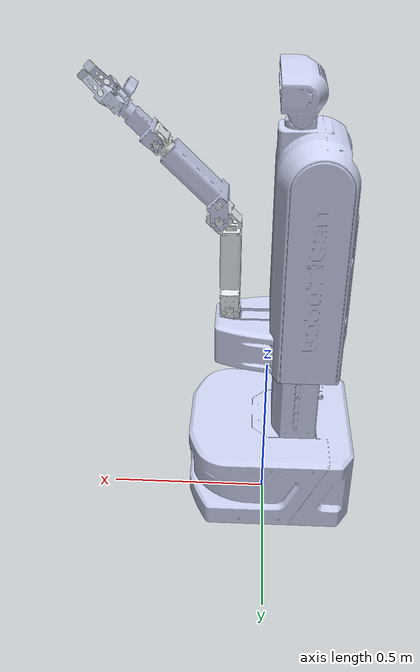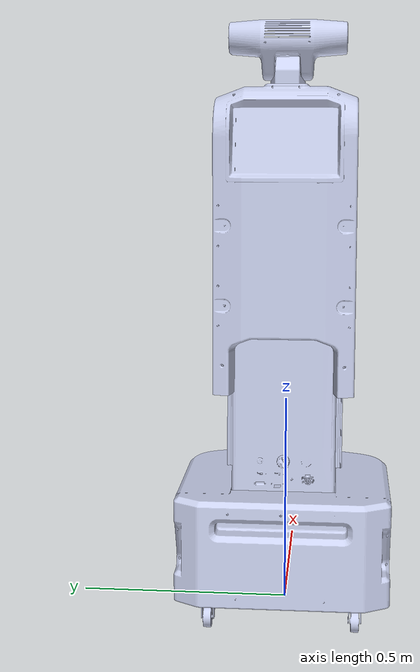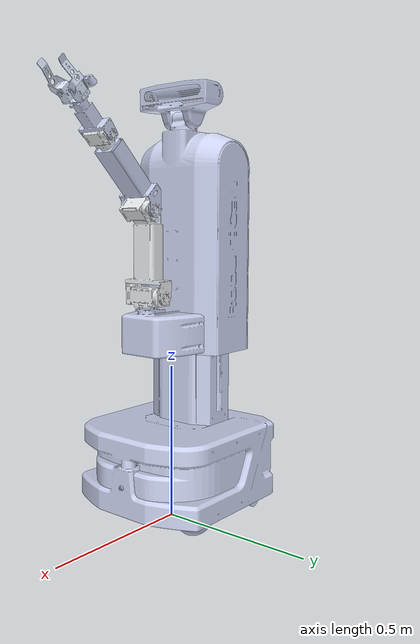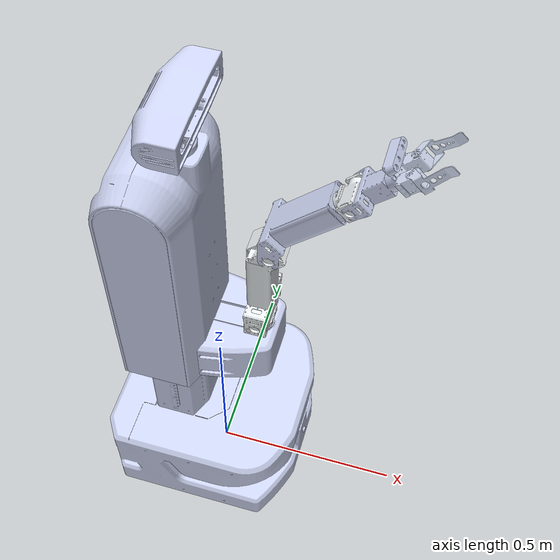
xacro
<?xml version="1.0"?>

<robot xmlns:xacro="http://www.ros.org/wiki/xacro" name="armadillo_robot" description="armadillo robot">

 <xacro:property name="M_PI" value="3.1415926535897931" />
 <xacro:property name="WHEEL_RADIUS" value="0.1016" />

 <xacro:include filename="$(find armadillo_description)/urdf/intel_d435.urdf"/>

<link name="base_footprint"/>

 <joint name="base_footprint_joint" type="fixed">
    <parent link="base_footprint"/>
    <child link="base_link"/>
    <origin xyz="0.00 0.00 ${WHEEL_RADIUS-0.0115}" rpy="0.0 0.0 0.0"/>
  </joint>

  <link
    name="base_link">
    <inertial>
      <origin
        xyz="-0.012353 0.000122 0.17716"
        rpy="0 0 0" />
       <mass
        value="30" />
        <inertia
          ixx="0.61639"
          ixy="-9.1727E-05"
          ixz="-0.093044"
          iyy="0.57997"
          iyz="5.3231E-05"
          izz="0.36693" />
        </inertial>
    <visual>
      <origin
        xyz="0 0 0"
        rpy="0 0 0" />
      <geometry>
        <mesh
          filename="package://armadillo_description/mesh/base_link.STL" />
      </geometry>
      <material
        name="">
        <color
          rgba="0.79216 0.81961 0.93333 1" />
      </material>
    </visual>
 <collision name='base_collision'>
       <origin
        xyz="0 0 0"
        rpy="0 0 0" />
      <geometry>
        <mesh
          filename="package://armadillo_description/mesh/base_link.STL" />
      </geometry>
          </collision>
  </link>

    <joint name="caster_back_left_joint" type="fixed">
      <parent link="base_link"/>
      <child link="caster_back_left_link"/>
      <origin xyz="-0.2 0.24 ${-WHEEL_RADIUS+0.0115+0.05}" rpy="${-M_PI/2} 0 0"/>
    </joint>
    <link name="caster_back_left_link">
      <collision>
        <geometry>
          <cylinder length="0.06" radius="0.05"/>
        </geometry>
        <origin rpy="0 0 0" xyz="0 0 -0.03"/>
      </collision>
      <inertial>
        <mass value="0.0001" />
        <origin xyz="0 0 0" />
        <inertia
        ixx="0.0069046"
        ixy="-3.8717E-08"
        ixz="2.0707E-07"
        iyy="0.01"
        iyz="-1.0124E-07"
        izz="0.0069054" />
      </inertial>
    </link>

    <joint name="caster_back_right_joint" type="fixed">
      <parent link="base_link"/>
      <child link="caster_back_right_link"/>
      <origin xyz="-0.2 -0.24 ${-WHEEL_RADIUS+0.0115+0.05}" rpy="${-M_PI/2} 0 0"/>
    </joint>
    <link name="caster_back_right_link">
      <collision>
        <geometry>
          <cylinder length="0.06" radius="0.05"/>
        </geometry>
        <origin rpy="0 0 0" xyz="0 0 0.03"/>
      </collision>
      <inertial>
        <mass value="0.0001" />
        <origin xyz="0 0 0" />
        <inertia
        ixx="0.0069046"
        ixy="-3.8717E-08"
        ixz="2.0707E-07"
        iyy="0.01"
        iyz="-1.0124E-07"
        izz="0.0069054" />
      </inertial>
    </link>

 <link
    name="left_wheel_link">
    <inertial>
      <origin
        xyz="9.16610941069373E-06 4.59070539915452E-09 8.0609835912647E-06"
        rpy="0 0 0" />
    <mass
        value="1.5" />
      <inertia
        ixx="0.0069046"
        ixy="-3.8717E-08"
        ixz="2.0707E-07"
        iyy="0.01"
        iyz="-1.0124E-07"
        izz="0.0069054" />

      </inertial>
    <visual>
      <origin
        xyz="0 0 0"
        rpy="0 0 0" />
      <geometry>
        <mesh
          filename="package://armadillo_description/mesh/left_wheel_link.STL" />
      </geometry>
      <material
        name="">
        <color
          rgba="0.792156862745098 0.819607843137255 0.933333333333333 1" />
      </material>
    </visual>
    <collision>
      <origin
        xyz="0 0 0"
        rpy="${M_PI/2} 0 0" />
      <geometry>
      <cylinder  length="0.07" radius="${WHEEL_RADIUS}"/>
      </geometry>
    </collision>
  </link>

  <joint
    name="left_wheel_joint"
    type="continuous">
    <origin
      xyz="0.063115 0.16085 0.0115"
      rpy="0 0 0" />
    <parent
      link="base_link" />
    <child
      link="left_wheel_link" />
    <axis
      xyz="0 1 0" />
    <limit
      effort="0.1"
      velocity="10.0" />
  </joint>

 <link
    name="right_wheel_link">
    <inertial>
      <origin
        xyz="9.16610941069373E-06 -4.99540929455033E-06 8.06098359126817E-06"
        rpy="0 0 0" />
       <mass
        value="1.5" />
      <inertia
        ixx="0.0069046"
        ixy="-3.8717E-08"
        ixz="-2.0707E-07"
        iyy="0.01"
        iyz="1.0124E-07"
        izz="0.0069054" />
    </inertial>
    <visual>
      <origin
        xyz="0 0 0"
        rpy="0 0 0" />
      <geometry>
        <mesh
          filename="package://armadillo_description/mesh/right_wheel_link.STL" />
      </geometry>
      <material
        name="">
        <color
          rgba="0.792156862745098 0.819607843137255 0.933333333333333 1" />
      </material>
    </visual>
   <collision>
      <origin
        xyz="0 0 0"
        rpy="${M_PI/2} 0 0" />
      <geometry>
      <cylinder  length="0.07" radius="${WHEEL_RADIUS}"/>
      </geometry>
    </collision>
  </link>

  <joint
    name="right_wheel_joint"
    type="continuous">
    <origin
      xyz="0.063115 -0.16085 0.0115"
      rpy="0 0 0" />
    <parent
      link="base_link" />
    <child
      link="right_wheel_link" />
    <axis
      xyz="0 1 0" />
    <limit
      effort="0.1"
      velocity="10.0" />
  </joint>

 <link
    name="caster_left_link">
     <inertial>
      <origin
        xyz="9.16610941069373E-06 -4.99540929455033E-06 8.06098359126817E-06"
        rpy="0 0 0" />
       <mass
        value="0.0001" />
      <inertia
        ixx="0.0069046"
        ixy="-3.8717E-08"
        ixz="-2.0707E-07"
        iyy="0.01"
        iyz="1.0124E-07"
        izz="0.0069054" />
    </inertial>

    <visual>
      <origin
        xyz="0 0 0"
        rpy="0 0 0" />
      <geometry>
        <mesh
          filename="package://armadillo_description/mesh/caster_left_link.STL" />
      </geometry>
      <material
        name="">
        <color
          rgba="0.792156862745098 0.819607843137255 0.933333333333333 1" />
      </material>
    </visual>

  </link>

  <link
    name="laser_link" />
  <joint
    name="laser_joint"
    type="fixed">
    <origin
      xyz="0.20337 0 0.143"
      rpy="0 0 0" />
    <parent
      link="base_link" />
    <child
      link="laser_link" />
    <axis
      xyz="0 0 0" />
  </joint>
  <link
    name="front_urf_link" />
  <joint
    name="front_urf_joint"
    type="fixed">
    <origin
      xyz="0.24229 0.00011161 0.068509"
      rpy="0 0 0" />
    <parent
      link="base_link" />
    <child
      link="front_urf_link" />
    <axis
      xyz="0 0 0" />
  </joint>
  <joint
    name="caster_left_joint"
    type="fixed">
    <origin
      xyz="-0.221558374889189 0.168999999975415 -0.0596832588142329"
      rpy="0 0 0" />
    <parent
      link="base_link" />
    <child
      link="caster_left_link" />
    <axis
      xyz="0 0 0" />
  </joint>
  <link
    name="caster_right_link">
      <inertial>
      <origin
        xyz="9.16610941069373E-06 -4.99540929455033E-06 8.06098359126817E-06"
        rpy="0 0 0" />
       <mass
        value="0.0001" />
      <inertia
        ixx="0.0069046"
        ixy="-3.8717E-08"
        ixz="-2.0707E-07"
        iyy="0.01"
        iyz="1.0124E-07"
        izz="0.0069054" />
    </inertial>
    <visual>
      <origin
        xyz="0 0 0"
        rpy="0 0 0" />
      <geometry>
        <mesh
          filename="package://armadillo_description/mesh/caster_right_link.STL" />
      </geometry>
      <material
        name="">
        <color
          rgba="0.792156862745098 0.819607843137255 0.933333333333333 1" />
      </material>
    </visual>

  </link>
  <joint
    name="caster_right_joint"
    type="fixed">
    <origin
      xyz="-0.221558374889189 -0.168999999975416 -0.0596832588142329"
      rpy="0 0 0" />
    <parent
      link="base_link" />
    <child
      link="caster_right_link" />
    <axis
      xyz="0 0 0" />
  </joint>

  <link
    name="torso_link">
  <inertial>
      <origin
        xyz="-0.059733 -0.00037419 0.54938"
        rpy="0 0 0" />
     <mass
         value="0.035511" />
     <inertia
        ixx="0.19579"
        ixy="2.4285E-05"
        ixz="-0.0045097"
        iyy="0.16807"
        iyz="-7.4938E-05"
        izz="0.072852" />
    </inertial>
    <visual>
      <origin
        xyz="0 0 0"
        rpy="0 0 0" />
      <geometry>
        <mesh
          filename="package://armadillo_description/mesh/torso_link.STL" />
      </geometry>
      <material
        name="">
        <color
          rgba="0.79216 0.81961 0.93333 1" />
      </material>
    </visual>
    <collision name="torso">
      <origin
        xyz="0 0 0"
        rpy="0 0 0" />
      <geometry>
        <mesh
          filename="package://armadillo_description/mesh/torso_link.STL" />
      </geometry>
    </collision>

     <collision name="safty box">
      <origin
        xyz="0 -0.03 0.9"
        rpy="0 0 0" />
      <geometry>
        <box size="0.09 0.5 0.6"/>
      </geometry>
    </collision>

  </link>
  <joint
    name="torso_joint"
      type="prismatic">
    <origin
      xyz="0 0 0"
      rpy="0 0 0" />
    <parent
      link="base_link" />
    <child
      link="torso_link" />
    <axis
      xyz="0 0 1" />
    <limit
      lower="0.05"
      upper="0.40"
      effort="0.001"
      velocity="0.1" />
  </joint>

  <link
    name="head_pan_link">
  <inertial>
      <origin
        xyz="0.0044497 -0.00020474 0.02363"
        rpy="0 0 0" />
      <mass
        value="0.001" />
      <inertia
        ixx="3.6365E-05"
        ixy="-2.125E-07"
        ixz="-4.0004E-07"
        iyy="3.8545E-05"
        iyz="-4.6643E-07"
        izz="4.1521E-05" />
    </inertial>
    <visual>
      <origin
        xyz="0 0 0"
        rpy="0 0 0" />
      <geometry>
        <mesh
          filename="package://armadillo_description/mesh/head_pan_link.STL" />
      </geometry>
      <material
        name="">
        <color
          rgba="0.79216 0.81961 0.93333 1" />
      </material>
    </visual>
    <collision>
      <origin
        xyz="0 0 0"
        rpy="0 0 0" />
      <geometry>
        <mesh
          filename="package://armadillo_description/mesh/head_pan_link.STL" />
      </geometry>
    </collision>
  </link>
  <joint
    name="head_pan_joint"
    type="revolute">
    <origin
      xyz="-0.055768 0 0.932"
      rpy="0 0 0" />
    <parent
      link="torso_link" />
    <child
      link="head_pan_link" />
    <axis
      xyz="0 0 1" />
    <limit
      upper="${3.1415926535897/4.0}"
      lower="${-3.1415926535897/4.0}"
      effort="0.5"
      velocity="2" />
  </joint>

  <link
    name="head_tilt_link">

    <inertial>
      <origin
        xyz="0.014321 0.00038338 0.064622"
        rpy="0 0 0" />
      <mass
        value="0.001" />
      <inertia
        ixx="0.00056403"
        ixy="-2.0419E-05"
        ixz="1.476E-05"
        iyy="0.00012267"
        iyz="1.5926E-07"
        izz="0.00057848" />
    </inertial>
    <visual>
      <origin
        xyz="0 0 0"
        rpy="0 0 0" />
      <geometry>
        <mesh
          filename="package://armadillo_description/mesh/head_tilt_link.STL" />
      </geometry>
      <material
        name="">
        <color
          rgba="0.79216 0.81961 0.93333 1" />
      </material>
    </visual>
    <collision>
      <origin
        xyz="0 0 0"
        rpy="0 0 0" />
      <geometry>
        <mesh
          filename="package://armadillo_description/mesh/head_tilt_link.STL" />
      </geometry>
    </collision>
  </link>
  <joint
    name="head_tilt_joint"
    type="revolute">
    <origin
      xyz="0 0 0.041"
        rpy="0 0 0" />
    <parent
      link="head_pan_link" />
    <child
      link="head_tilt_link" />
    <axis
      xyz="0 1 0" />
    <limit
    upper="${50.0*M_PI/180.0}"
    lower="${-M_PI/6}"
      effort="0.5"
      velocity="2" />
  </joint>

  <link
    name="kinect2_link" />
   <inertial>
      <origin
        xyz="0.014321 0.00038338 0.064622"
        rpy="0 0 0" />
      <mass
        value="0.001" />
      <inertia
        ixx="0.00056403"
        ixy="-2.0419E-05"
        ixz="1.476E-05"
        iyy="0.00012267"
        iyz="1.5926E-07"
        izz="0.00057848" />
    </inertial>
  <joint
    name="kinect2_joint"
    type="fixed">
    <origin
      xyz="0.053 0.0073569 0.070961"
      rpy="0 0 0" />
    <parent
      link="head_tilt_link" />
    <child
      link="kinect2_link" />
    <axis
      xyz="0 0 0" />
  </joint>

   <joint name="kinect2_rgb_joint" type="fixed">
      <origin xyz="0 -0.0935 0" rpy="0 0 0"/>
      <parent link="kinect2_link"/>
      <child link="kinect2_rgb_frame" />
    </joint>

    <link name="kinect2_rgb_frame">
      </link>

      <joint name="kinect2_rgb_optical_joint" type="fixed">
	<origin xyz="0 0 0" rpy="${-M_PI/2} 0 ${-M_PI/2}" />
	<parent link="kinect2_rgb_frame" />
	<child link="kinect2_rgb_optical_frame" />
      </joint>

      <link name="kinect2_rgb_optical_frame">
	</link>

	<joint name="kinect2_depth_joint" type="fixed">
	  <origin xyz="0 0 0" rpy="0 0 0" />
	  <parent link="kinect2_rgb_frame" />
	  <child link="kinect2_depth_frame" />
	</joint>

	<link name="kinect2_depth_frame">
	  </link>

	  <joint name="kinect2_depth_optical_joint" type="fixed">
	    <origin xyz="0 0 0" rpy="${-M_PI/2} 0 ${-M_PI/2}" />
	    <parent link="kinect2_depth_frame" />
	    <child link="kinect2_depth_optical_frame" />
	  </joint>
	  <link name="kinect2_depth_optical_frame">

</link>

  <link
    name="rotation1_link">
    <inertial>
      <origin
        xyz="-3.5316E-10 0.0073117 0.032399"
        rpy="0 0 0" />
      <mass
        value="0.001" />
      <inertia
        ixx="0.00055596"
        ixy="9.2522E-12"
        ixz="9.2226E-12"
        iyy="0.00016945"
        iyz="6.1918E-06"
        izz="0.00055286" />
    </inertial>
    <visual>
      <origin
        xyz="0 0 0"
        rpy="0 0 0" />
      <geometry>
        <mesh
          filename="package://armadillo_description/mesh/rotation1_link.STL" />
      </geometry>
      <material
        name="">
        <color
          rgba="0.89804 0.91765 0.92941 1" />
      </material>
    </visual>
    <collision>
      <origin
        xyz="0 0 0"
        rpy="0 0 0" />
      <geometry>
        <mesh
          filename="package://armadillo_description/mesh/rotation1_link.STL" />
      </geometry>
    </collision>
  </link>

  <joint
    name="rotation1_joint"
    type="revolute">
    <origin
      xyz="0.11617 0 0.3885"
      rpy="0 0 0" />
    <parent
      link="torso_link" />
    <child
      link="rotation1_link" />
    <axis
      xyz="0 0 1" />
       <limit
      effort="0.01"
      lower="-1.57"
      upper="1.57"
      velocity="2.0" />
  </joint>
  <link
    name="shoulder1_link">
    <inertial>
      <origin
        xyz="0.01628 -0.03243 0.20044"
        rpy="0 0 0" />
      <mass
        value="0.001" />
      <inertia
        ixx="0.0043595"
        ixy="-3.1405E-06"
        ixz="0.00053636"
        iyy="0.0041046"
        iyz="-5.2275E-05"
        izz="0.00081871" />
    </inertial>
    <visual>
      <origin
        xyz="0 0 0"
        rpy="0 0 0" />
      <geometry>
        <mesh
          filename="package://armadillo_description/mesh/shoulder1_link.STL" />
      </geometry>
      <material
        name="">
        <color
          rgba="0.89804 0.91765 0.92941 1" />
      </material>
    </visual>
    <collision>
      <origin
        xyz="0 0 0"
        rpy="0 0 0" />
      <geometry>
        <mesh
          filename="package://armadillo_description/mesh/shoulder1_link.STL" />
      </geometry>
    </collision>
  </link>
  <joint
    name="shoulder1_joint"
    type="revolute">
    <origin
      xyz="0 0.039 0.0335"
      rpy="0 0 0" />
    <parent
      link="rotation1_link" />
    <child
      link="shoulder1_link" />
    <axis
      xyz="0 1 0" />
    <limit
      effort="0.01"
      lower="-1.57"
      upper="1.95"
      velocity="2.0" />
  </joint>
  <link
    name="shoulder2_link">
    <inertial>
      <origin
        xyz="0.068154 -0.020691 0.11032"
        rpy="0 0 0" />
      <mass
        value="0.001" />
      <inertia
        ixx="0.00093237"
        ixy="-1.0052E-05"
        ixz="0.00048929"
        iyy="0.0012859"
        iyz="-1.3286E-05"
        izz="0.00091329" />
    </inertial>
    <visual>
      <origin
        xyz="0 0 0"
        rpy="0 0 0" />
      <geometry>
        <mesh
          filename="package://armadillo_description/mesh/shoulder2_link.STL" />
      </geometry>
      <material
        name="">
        <color
          rgba="0.79216 0.81961 0.93333 1" />
      </material>
    </visual>
    <collision>
      <origin
        xyz="0 0 0"
        rpy="0 0 0" />
      <geometry>
        <mesh
          filename="package://armadillo_description/mesh/shoulder2_link.STL" />
      </geometry>
    </collision>
  </link>
  <joint
    name="shoulder2_joint"
    type="revolute">
    <origin
      xyz="0.029998 -0.012 0.264"
      rpy="0 0 0" />
    <parent
      link="shoulder1_link" />
    <child
      link="shoulder2_link" />
    <axis
      xyz="0 1 0" />
    <limit
      effort="0.1"
      lower="-1.48"
      upper="2.3522"
      velocity="2.0" />
  </joint>
  <link
    name="rotation2_link">
    <inertial>
      <origin
        xyz="5.0638E-06 -0.0012262 0.056857"
        rpy="0 0 0" />
      <mass
        value="0.001" />
      <inertia
        ixx="0.00014092"
        ixy="1.0984E-09"
        ixz="1.6669E-08"
        iyy="8.0775E-05"
        iyz="-1.7606E-06"
        izz="0.00010647" />
    </inertial>
    <visual>
      <origin
        xyz="0 0 0"
        rpy="0 0 0" />
      <geometry>
        <mesh
          filename="package://armadillo_description/mesh/rotation2_link.STL" />
      </geometry>
      <material
        name="">
        <color
          rgba="0.89804 0.91765 0.92941 1" />
      </material>
    </visual>
    <collision>
      <origin
        xyz="0 0 0"
        rpy="0 0 0" />
      <geometry>
        <mesh
          filename="package://armadillo_description/mesh/rotation2_link.STL" />
      </geometry>
    </collision>
  </link>
  <joint
    name="rotation2_joint"
    type="revolute">
    <origin
      xyz="0.11667 -0.021 0.1591"
      rpy="1.3528E-11 0.7854 1.9131E-11" />
    <parent
      link="shoulder2_link" />
    <child
      link="rotation2_link" />
    <axis
      xyz="0 0 1" />
   <limit
      effort="0.1"
      lower="-1.57"
      upper="1.57"
      velocity="2.0" />
  </joint>
  <link
    name="shoulder3_link">
    <inertial>
      <origin
        xyz="3.9875E-11 -0.044252 0.069689"
        rpy="0 0 0" />
      <mass
        value="0.001" />
      <inertia
        ixx="0.00018198"
        ixy="2.1351E-13"
        ixz="-2.3815E-13"
        iyy="0.00015335"
        iyz="-5.6341E-06"
        izz="7.5641E-05" />
    </inertial>
    <visual>
      <origin
        xyz="0 0 0"
        rpy="0 0 0" />
      <geometry>
        <mesh
          filename="package://armadillo_description/mesh/shoulder3_link.STL" />
      </geometry>
      <material
        name="">
        <color
          rgba="0.79216 0.81961 0.93333 1" />
      </material>
    </visual>
    <collision>
      <origin
        xyz="0 0 0"
        rpy="0 0 0" />
      <geometry>
        <mesh
          filename="package://armadillo_description/mesh/shoulder3_link.STL" />
      </geometry>
    </collision>
  </link>
  <joint
    name="shoulder3_joint"
    type="revolute">
    <origin
      xyz="0 0.045 0.063"
      rpy="0 0 1.862E-16" />
    <parent
      link="rotation2_link" />
    <child
      link="shoulder3_link" />
    <axis
      xyz="0 1 0" />
    <limit
      effort="0.1"
      lower="-1.57"
      upper="1.57"
      velocity="2.0" />
  </joint>
  <link
    name="wrist_link">
    <inertial>
      <origin
        xyz="-8.1889E-11 0.02077 -0.0027746"
        rpy="0 0 0" />
      <mass
        value="0.001" />
      <inertia
        ixx="4.4099E-05"
        ixy="-1.2434E-13"
        ixz="-1.4422E-13"
        iyy="9.4421E-05"
        iyz="3.0209E-06"
        izz="0.00010114" />
    </inertial>
    <visual>
      <origin
        xyz="0 0 0"
        rpy="0 0 0" />
      <geometry>
        <mesh
          filename="package://armadillo_description/mesh/wrist_link.STL" />
      </geometry>
      <material
        name="">
        <color
          rgba="0.86667 0.9098 1 1" />
      </material>
    </visual>
    <collision>
      <origin
        xyz="0 0 0"
        rpy="0 0 0" />
      <geometry>
        <mesh
          filename="package://armadillo_description/mesh/wrist_link.STL" />
      </geometry>
    </collision>
  </link>
  <joint
    name="wrist_joint"
    type="revolute">
    <origin
      xyz="0 -0.045 0.123"
      rpy="1.5708 1.353E-11 1.5708" />
    <parent
      link="shoulder3_link" />
    <child
      link="wrist_link" />
    <axis
      xyz="0 1 0" />
 <limit
      effort="0.1"
      lower="-3.14"
      upper="3.14"
      velocity="2.0" />
  </joint>

  <link name="gripper_link"/>

<joint name="gripper_joint" type="fixed">
    <origin xyz="0 0.06 0" rpy="${M_PI} 0 ${M_PI/2}"/>
    <parent link="wrist_link"/>
    <child link="gripper_link"/>
 </joint>

  <link
    name="left_finger_link">
    <inertial>
      <origin
        xyz="5.5511E-17 0.015598 0.034754"
        rpy="0 0 0" />
      <mass
        value="0.001" />
      <inertia
        ixx="1.4683E-05"
        ixy="-1.0482E-21"
        ixz="1.8423E-20"
        iyy="1.7304E-05"
        iyz="9.2811E-07"
        izz="4.5506E-06" />
    </inertial>
    <visual>
      <origin
        xyz="0 0 0"
        rpy="0 0 0" />
      <geometry>
        <mesh
          filename="package://armadillo_description/mesh/left_finger_link.STL" />
      </geometry>
      <material
        name="">
        <color
          rgba="0.86667 0.9098 1 1" />
      </material>
    </visual>
    <collision>
      <origin
        xyz="0 0 0"
        rpy="0 0 0" />
      <geometry>
        <mesh
          filename="package://armadillo_description/mesh/left_finger_link.STL" />
      </geometry>
    </collision>
  </link>
  <joint
    name="left_finger_joint"
    type="revolute">
    <origin
      xyz="0.025 0.03725 0"
      rpy="1.5708 -1.5708 ${M_PI}" />
    <parent
      link="wrist_link" />
    <child
      link="left_finger_link" />
    <axis
      xyz="1 0 0" />
    <limit
      effort="0.5"
      lower="-1.57"
      upper="1.57"
      velocity="0.1" />
  </joint>
  <link
    name="right_finger_link">
    <inertial>
      <origin
        xyz="-1.1102E-16 -0.015598 0.034754"
        rpy="0 0 0" />
      <mass
        value="0.001" />
      <inertia
        ixx="1.4683E-05"
        ixy="2.0869E-20"
        ixz="-3.5787E-20"
        iyy="1.7304E-05"
        iyz="-9.2811E-07"
        izz="4.5506E-06" />
    </inertial>
    <visual>
      <origin
        xyz="0 0 0"
        rpy="0 0 0" />
      <geometry>
        <mesh
          filename="package://armadillo_description/mesh/right_finger_link.STL" />
      </geometry>
      <material
        name="">
        <color
          rgba="0.86667 0.9098 1 1" />
      </material>
    </visual>
    <collision>
      <origin
        xyz="0 0 0"
        rpy="0 0 0" />
      <geometry>
        <mesh
          filename="package://armadillo_description/mesh/right_finger_link.STL" />
      </geometry>
    </collision>
  </link>
  <joint
    name="right_finger_joint"
    type="revolute">
    <origin
      xyz="-0.025 0.03725 0"
      rpy="1.5708 -1.5708 ${M_PI}" />
    <parent
      link="wrist_link" />
    <child
      link="right_finger_link" />
    <axis
      xyz="1 0 0" />
  <limit
      effort="0.5"
      lower="-1.57"
      upper="1.57"
      velocity="0.1" />
  </joint>

    <joint
    name="intel_d435_joint"
    type="fixed">
    <origin
      xyz="0 0.0143 -0.0495"
      rpy="-3.1416 6.1062E-16 1.5708" />
    <parent
      link="wrist_link" />
    <child
      link="camera_link" />
    <axis
      xyz="0 0 0" />
  </joint>

</robot>

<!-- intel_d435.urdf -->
<robot
  name="intel_d435">
<!-- camera depth joints and links -->
   <link
    name="camera_link">
    <inertial>
      <origin
        xyz="0.00209672590490473 0.00107373429916791 -0.0124264025663287"
        rpy="0 0 0" />
      <mass
        value="0.0446256012085417" />
      <inertia
        ixx="2.62358816469287E-05"
        ixy="3.51148589025883E-07"
        ixz="3.91275343984781E-11"
        iyy="4.02618646244092E-06"
        iyz="-6.05255657169474E-09"
        izz="2.64982132448102E-05" />
    </inertial>
    <visual>
      <origin
        xyz="0 0 0.0125"
        rpy="0 0 0" />
      <geometry>
        <mesh
          filename="package://armadillo_description/mesh/intel_d435.STL" />
      </geometry>
      <material
        name="">
        <color
          rgba="0.792156862745098 0.819607843137255 0.933333333333333 1" />
      </material>
    </visual>
    <collision>
      <origin
        xyz="0 0 0"
        rpy="0 0 0" />
      <geometry>
        <mesh
          filename="package://armadillo_description/mesh/intel_d435.STL" />
      </geometry>
    </collision>
  </link>

    <!-- camera depth joints and links -->
    <joint name="camera_depth_joint" type="fixed">
      <origin xyz="0 -0.0122 0" rpy="0 0 0"/>
      <parent link="camera_link"/>
      <child link="camera_depth_frame" />
    </joint>
    <link name="camera_depth_frame"/>

    <joint name="camera_depth_optical_joint" type="fixed">
      <origin xyz="0 0 0" rpy="${-M_PI/2} 0 ${-M_PI/2}" />
      <parent link="camera_depth_frame" />
      <child link="camera_depth_optical_frame" />
    </joint>
    <link name="camera_depth_optical_frame"/>

    <!-- camera left IR joints and links -->
    <joint name="camera_left_ir_joint" type="fixed">
      <origin xyz="0 -0.0322 0" rpy="0 0 0" />
      <parent link="camera_link" />
      <child link="camera_left_ir_frame" />
    </joint>
    <link name="camera_left_ir_frame"/>

    <joint name="camera_left_ir_optical_joint" type="fixed">
      <origin xyz="0 0 0" rpy="${-M_PI/2} 0 ${-M_PI/2}" />
      <parent link="camera_left_ir_frame" />
      <child link="camera_left_ir_optical_frame" />
    </joint>
    <link name="camera_left_ir_optical_frame"/>

    <!-- camera right IR joints and links -->
    <joint name="camera_right_ir_joint" type="fixed">
      <origin xyz="0 0.0178 0" rpy="0 0 0" />
      <parent link="camera_link" />
      <child link="camera_right_ir_frame" />
    </joint>
    <link name="camera_right_ir_frame"/>

    <joint name="camera_right_ir_optical_joint" type="fixed">
      <origin xyz="0 0 0" rpy="${-M_PI/2} 0 ${-M_PI/2}" />
      <parent link="camera_right_ir_frame" />
      <child link="camera_right_ir_optical_frame" />
    </joint>
    <link name="camera_right_ir_optical_frame"/>

    <!-- camera fisheye joints and links -->
    <joint name="camera_fisheye_joint" type="fixed">
      <origin xyz="0 0.0322 0" rpy="0 0 0" />
      <parent link="camera_link" />
      <child link="camera_fisheye_frame" />
    </joint>
    <link name="camera_fisheye_frame"/>

    <joint name="camera_fisheye_optical_joint" type="fixed">
      <origin xyz="0 0 0" rpy="${-M_PI/2} 0 ${-M_PI/2}" />
      <parent link="camera_fisheye_frame" />
      <child link="camera_fisheye_optical_frame" />
    </joint>
    <link name="camera_fisheye_optical_frame"/>
</robot>
